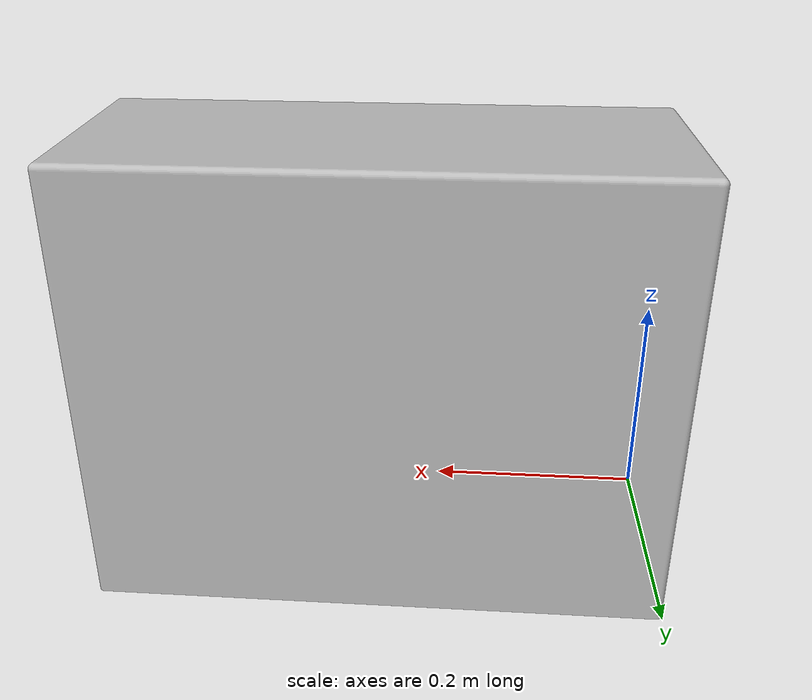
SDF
<?xml version="1.0"?>

<sdf version="1.5">
  <model name="dock">
    <static>false</static>
    <link name="link">

      <inertial>
        <mass>20.0</mass>
        <inertia>
          <ixx>0.00</ixx>
          <ixy>0.0</ixy>
          <ixz>0.0</ixz>
          <iyy>0.00</iyy>
          <iyz>0.0</iyz>
          <izz>0.00</izz>
        </inertia>
      </inertial>

      <collision name="collision">
        <geometry>
          <mesh>
            <uri>model://dock/mesh/dock.dae</uri>
            <scale>0.001 0.001 0.001</scale>
          </mesh>
        </geometry>
      </collision>

      <visual name="visual">
        <geometry>
          <mesh>
            <uri>model://dock/mesh/dock.dae</uri>
            <scale>0.001 0.001 0.001</scale>
          </mesh>
        </geometry>
      </visual>

    </link>
  </model>
</sdf>
